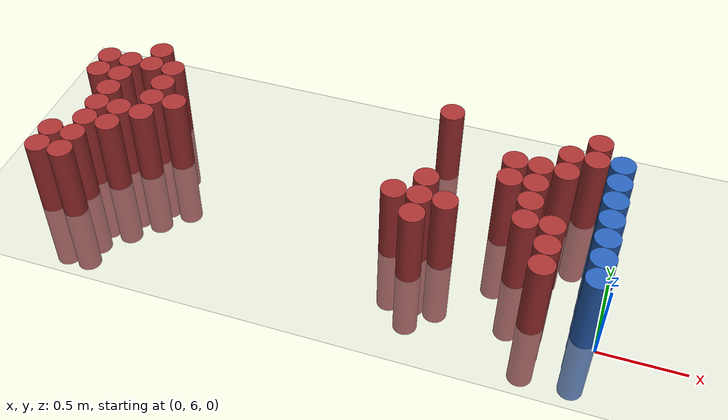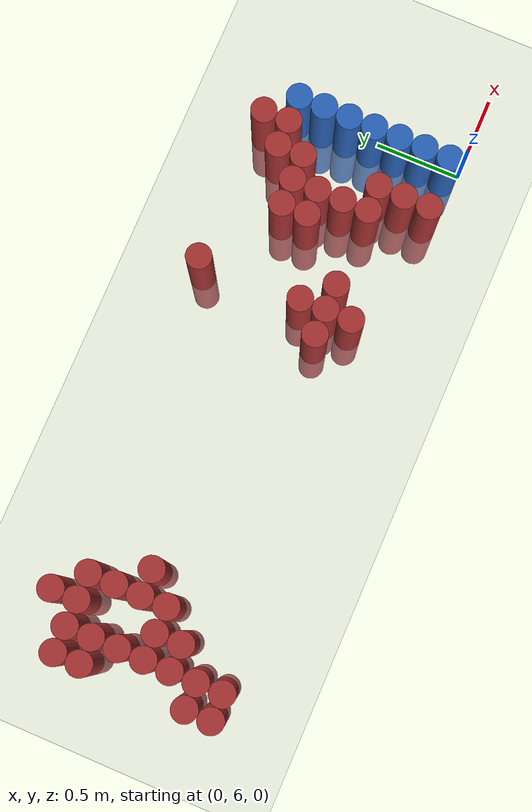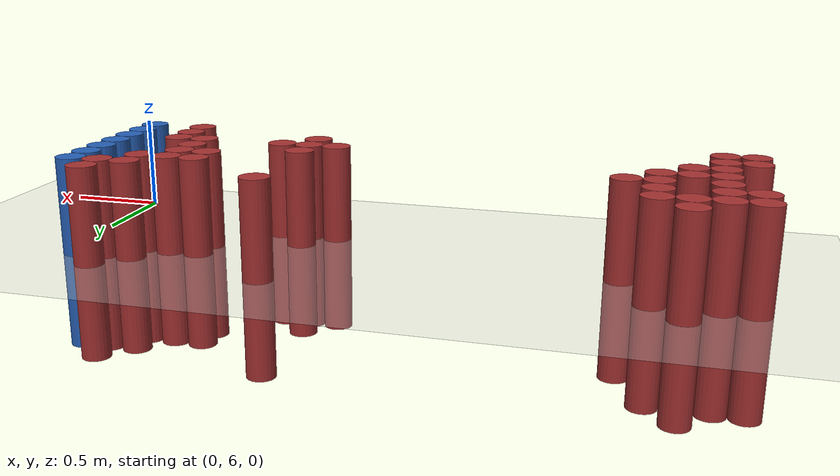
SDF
<sdf version="1.6">
 <world name="default">
  <model name="ground_plane">
   <static>1</static>
   <link name="link">
    <collision name="collision">
     <geometry><plane><normal>0 0 1</normal><size>100 100</size></plane></geometry>
     <surface><friction><ode><mu>100</mu><mu2>50</mu2></ode></friction></surface>
    </collision>
    <visual name="visual">
     <cast_shadows>0</cast_shadows>
     <geometry><plane><normal>0 0 1</normal><size>100 100</size></plane></geometry>
     <material>
      <script><uri>file://media/materials/scripts/gazebo.material</uri><name>Gazebo/Grey</name></script>
     </material>
    </visual>
   </link>
  </model>
  <model name="unit_cylinder_168">
   <static>1</static>
   <pose>-3.375000 6.075000 0.000000 0.000000 0.000000 0.000000</pose>
   <link name="link">
    <inertial>
     <mass>1</mass>
     <inertia><ixx>0.145833</ixx><ixy>0</ixy><ixz>0</ixz><iyy>0.145833</iyy><iyz>0</iyz><izz>0.125</izz></inertia>
    </inertial>
    <collision name="collision">
     <geometry><cylinder><radius>0.075000</radius><length>1</length></cylinder></geometry>
    </collision>
    <visual name="visual">
     <geometry><cylinder><radius>0.075000</radius><length>1</length></cylinder></geometry>
     <material>
      <ambient>0.648000 0.192000 0.192000 1</ambient>
      <diffuse>0.648000 0.192000 0.192000 1</diffuse>
     </material>
     <material>
      <script><name>Gazebo/Grey</name><uri>file://media/materials/scripts/gazebo.material</uri></script>
     </material>
    </visual>
   </link>
  </model>
  <model name="unit_cylinder_169">
   <static>1</static>
   <pose>-3.375000 6.225000 0.000000 0.000000 0.000000 0.000000</pose>
   <link name="link">
    <inertial>
     <mass>1</mass>
     <inertia><ixx>0.145833</ixx><ixy>0</ixy><ixz>0</ixz><iyy>0.145833</iyy><iyz>0</iyz><izz>0.125</izz></inertia>
    </inertial>
    <collision name="collision">
     <geometry><cylinder><radius>0.075000</radius><length>1</length></cylinder></geometry>
    </collision>
    <visual name="visual">
     <geometry><cylinder><radius>0.075000</radius><length>1</length></cylinder></geometry>
     <material>
      <ambient>0.648000 0.192000 0.192000 1</ambient>
      <diffuse>0.648000 0.192000 0.192000 1</diffuse>
     </material>
     <material>
      <script><name>Gazebo/Grey</name><uri>file://media/materials/scripts/gazebo.material</uri></script>
     </material>
    </visual>
   </link>
  </model>
  <model name="unit_cylinder_170">
   <static>1</static>
   <pose>-3.375000 6.825000 0.000000 0.000000 0.000000 0.000000</pose>
   <link name="link">
    <inertial>
     <mass>1</mass>
     <inertia><ixx>0.145833</ixx><ixy>0</ixy><ixz>0</ixz><iyy>0.145833</iyy><iyz>0</iyz><izz>0.125</izz></inertia>
    </inertial>
    <collision name="collision">
     <geometry><cylinder><radius>0.075000</radius><length>1</length></cylinder></geometry>
    </collision>
    <visual name="visual">
     <geometry><cylinder><radius>0.075000</radius><length>1</length></cylinder></geometry>
     <material>
      <ambient>0.648000 0.192000 0.192000 1</ambient>
      <diffuse>0.648000 0.192000 0.192000 1</diffuse>
     </material>
     <material>
      <script><name>Gazebo/Grey</name><uri>file://media/materials/scripts/gazebo.material</uri></script>
     </material>
    </visual>
   </link>
  </model>
  <model name="unit_cylinder_171">
   <static>1</static>
   <pose>-3.375000 6.975000 0.000000 0.000000 0.000000 0.000000</pose>
   <link name="link">
    <inertial>
     <mass>1</mass>
     <inertia><ixx>0.145833</ixx><ixy>0</ixy><ixz>0</ixz><iyy>0.145833</iyy><iyz>0</iyz><izz>0.125</izz></inertia>
    </inertial>
    <collision name="collision">
     <geometry><cylinder><radius>0.075000</radius><length>1</length></cylinder></geometry>
    </collision>
    <visual name="visual">
     <geometry><cylinder><radius>0.075000</radius><length>1</length></cylinder></geometry>
     <material>
      <ambient>0.648000 0.192000 0.192000 1</ambient>
      <diffuse>0.648000 0.192000 0.192000 1</diffuse>
     </material>
     <material>
      <script><name>Gazebo/Grey</name><uri>file://media/materials/scripts/gazebo.material</uri></script>
     </material>
    </visual>
   </link>
  </model>
  <model name="unit_cylinder_176">
   <static>1</static>
   <pose>-3.225000 6.075000 0.000000 0.000000 0.000000 0.000000</pose>
   <link name="link">
    <inertial>
     <mass>1</mass>
     <inertia><ixx>0.145833</ixx><ixy>0</ixy><ixz>0</ixz><iyy>0.145833</iyy><iyz>0</iyz><izz>0.125</izz></inertia>
    </inertial>
    <collision name="collision">
     <geometry><cylinder><radius>0.075000</radius><length>1</length></cylinder></geometry>
    </collision>
    <visual name="visual">
     <geometry><cylinder><radius>0.075000</radius><length>1</length></cylinder></geometry>
     <material>
      <ambient>0.648000 0.192000 0.192000 1</ambient>
      <diffuse>0.648000 0.192000 0.192000 1</diffuse>
     </material>
     <material>
      <script><name>Gazebo/Grey</name><uri>file://media/materials/scripts/gazebo.material</uri></script>
     </material>
    </visual>
   </link>
  </model>
  <model name="unit_cylinder_177">
   <static>1</static>
   <pose>-3.225000 6.225000 0.000000 0.000000 0.000000 0.000000</pose>
   <link name="link">
    <inertial>
     <mass>1</mass>
     <inertia><ixx>0.145833</ixx><ixy>0</ixy><ixz>0</ixz><iyy>0.145833</iyy><iyz>0</iyz><izz>0.125</izz></inertia>
    </inertial>
    <collision name="collision">
     <geometry><cylinder><radius>0.075000</radius><length>1</length></cylinder></geometry>
    </collision>
    <visual name="visual">
     <geometry><cylinder><radius>0.075000</radius><length>1</length></cylinder></geometry>
     <material>
      <ambient>0.648000 0.192000 0.192000 1</ambient>
      <diffuse>0.648000 0.192000 0.192000 1</diffuse>
     </material>
     <material>
      <script><name>Gazebo/Grey</name><uri>file://media/materials/scripts/gazebo.material</uri></script>
     </material>
    </visual>
   </link>
  </model>
  <model name="unit_cylinder_178">
   <static>1</static>
   <pose>-3.225000 6.375000 0.000000 0.000000 0.000000 0.000000</pose>
   <link name="link">
    <inertial>
     <mass>1</mass>
     <inertia><ixx>0.145833</ixx><ixy>0</ixy><ixz>0</ixz><iyy>0.145833</iyy><iyz>0</iyz><izz>0.125</izz></inertia>
    </inertial>
    <collision name="collision">
     <geometry><cylinder><radius>0.075000</radius><length>1</length></cylinder></geometry>
    </collision>
    <visual name="visual">
     <geometry><cylinder><radius>0.075000</radius><length>1</length></cylinder></geometry>
     <material>
      <ambient>0.648000 0.192000 0.192000 1</ambient>
      <diffuse>0.648000 0.192000 0.192000 1</diffuse>
     </material>
     <material>
      <script><name>Gazebo/Grey</name><uri>file://media/materials/scripts/gazebo.material</uri></script>
     </material>
    </visual>
   </link>
  </model>
  <model name="unit_cylinder_179">
   <static>1</static>
   <pose>-3.225000 6.525000 0.000000 0.000000 0.000000 0.000000</pose>
   <link name="link">
    <inertial>
     <mass>1</mass>
     <inertia><ixx>0.145833</ixx><ixy>0</ixy><ixz>0</ixz><iyy>0.145833</iyy><iyz>0</iyz><izz>0.125</izz></inertia>
    </inertial>
    <collision name="collision">
     <geometry><cylinder><radius>0.075000</radius><length>1</length></cylinder></geometry>
    </collision>
    <visual name="visual">
     <geometry><cylinder><radius>0.075000</radius><length>1</length></cylinder></geometry>
     <material>
      <ambient>0.648000 0.192000 0.192000 1</ambient>
      <diffuse>0.648000 0.192000 0.192000 1</diffuse>
     </material>
     <material>
      <script><name>Gazebo/Grey</name><uri>file://media/materials/scripts/gazebo.material</uri></script>
     </material>
    </visual>
   </link>
  </model>
  <model name="unit_cylinder_180">
   <static>1</static>
   <pose>-3.225000 6.675000 0.000000 0.000000 0.000000 0.000000</pose>
   <link name="link">
    <inertial>
     <mass>1</mass>
     <inertia><ixx>0.145833</ixx><ixy>0</ixy><ixz>0</ixz><iyy>0.145833</iyy><iyz>0</iyz><izz>0.125</izz></inertia>
    </inertial>
    <collision name="collision">
     <geometry><cylinder><radius>0.075000</radius><length>1</length></cylinder></geometry>
    </collision>
    <visual name="visual">
     <geometry><cylinder><radius>0.075000</radius><length>1</length></cylinder></geometry>
     <material>
      <ambient>0.648000 0.192000 0.192000 1</ambient>
      <diffuse>0.648000 0.192000 0.192000 1</diffuse>
     </material>
     <material>
      <script><name>Gazebo/Grey</name><uri>file://media/materials/scripts/gazebo.material</uri></script>
     </material>
    </visual>
   </link>
  </model>
  <model name="unit_cylinder_181">
   <static>1</static>
   <pose>-3.225000 6.825000 0.000000 0.000000 0.000000 0.000000</pose>
   <link name="link">
    <inertial>
     <mass>1</mass>
     <inertia><ixx>0.145833</ixx><ixy>0</ixy><ixz>0</ixz><iyy>0.145833</iyy><iyz>0</iyz><izz>0.125</izz></inertia>
    </inertial>
    <collision name="collision">
     <geometry><cylinder><radius>0.075000</radius><length>1</length></cylinder></geometry>
    </collision>
    <visual name="visual">
     <geometry><cylinder><radius>0.075000</radius><length>1</length></cylinder></geometry>
     <material>
      <ambient>0.648000 0.192000 0.192000 1</ambient>
      <diffuse>0.648000 0.192000 0.192000 1</diffuse>
     </material>
     <material>
      <script><name>Gazebo/Grey</name><uri>file://media/materials/scripts/gazebo.material</uri></script>
     </material>
    </visual>
   </link>
  </model>
  <model name="unit_cylinder_182">
   <static>1</static>
   <pose>-3.225000 6.975000 0.000000 0.000000 0.000000 0.000000</pose>
   <link name="link">
    <inertial>
     <mass>1</mass>
     <inertia><ixx>0.145833</ixx><ixy>0</ixy><ixz>0</ixz><iyy>0.145833</iyy><iyz>0</iyz><izz>0.125</izz></inertia>
    </inertial>
    <collision name="collision">
     <geometry><cylinder><radius>0.075000</radius><length>1</length></cylinder></geometry>
    </collision>
    <visual name="visual">
     <geometry><cylinder><radius>0.075000</radius><length>1</length></cylinder></geometry>
     <material>
      <ambient>0.648000 0.192000 0.192000 1</ambient>
      <diffuse>0.648000 0.192000 0.192000 1</diffuse>
     </material>
     <material>
      <script><name>Gazebo/Grey</name><uri>file://media/materials/scripts/gazebo.material</uri></script>
     </material>
    </visual>
   </link>
  </model>
  <model name="unit_cylinder_185">
   <static>1</static>
   <pose>-3.075000 6.375000 0.000000 0.000000 0.000000 0.000000</pose>
   <link name="link">
    <inertial>
     <mass>1</mass>
     <inertia><ixx>0.145833</ixx><ixy>0</ixy><ixz>0</ixz><iyy>0.145833</iyy><iyz>0</iyz><izz>0.125</izz></inertia>
    </inertial>
    <collision name="collision">
     <geometry><cylinder><radius>0.075000</radius><length>1</length></cylinder></geometry>
    </collision>
    <visual name="visual">
     <geometry><cylinder><radius>0.075000</radius><length>1</length></cylinder></geometry>
     <material>
      <ambient>0.648000 0.192000 0.192000 1</ambient>
      <diffuse>0.648000 0.192000 0.192000 1</diffuse>
     </material>
     <material>
      <script><name>Gazebo/Grey</name><uri>file://media/materials/scripts/gazebo.material</uri></script>
     </material>
    </visual>
   </link>
  </model>
  <model name="unit_cylinder_186">
   <static>1</static>
   <pose>-3.075000 6.525000 0.000000 0.000000 0.000000 0.000000</pose>
   <link name="link">
    <inertial>
     <mass>1</mass>
     <inertia><ixx>0.145833</ixx><ixy>0</ixy><ixz>0</ixz><iyy>0.145833</iyy><iyz>0</iyz><izz>0.125</izz></inertia>
    </inertial>
    <collision name="collision">
     <geometry><cylinder><radius>0.075000</radius><length>1</length></cylinder></geometry>
    </collision>
    <visual name="visual">
     <geometry><cylinder><radius>0.075000</radius><length>1</length></cylinder></geometry>
     <material>
      <ambient>0.648000 0.192000 0.192000 1</ambient>
      <diffuse>0.648000 0.192000 0.192000 1</diffuse>
     </material>
     <material>
      <script><name>Gazebo/Grey</name><uri>file://media/materials/scripts/gazebo.material</uri></script>
     </material>
    </visual>
   </link>
  </model>
  <model name="unit_cylinder_187">
   <static>1</static>
   <pose>-3.075000 6.975000 0.000000 0.000000 0.000000 0.000000</pose>
   <link name="link">
    <inertial>
     <mass>1</mass>
     <inertia><ixx>0.145833</ixx><ixy>0</ixy><ixz>0</ixz><iyy>0.145833</iyy><iyz>0</iyz><izz>0.125</izz></inertia>
    </inertial>
    <collision name="collision">
     <geometry><cylinder><radius>0.075000</radius><length>1</length></cylinder></geometry>
    </collision>
    <visual name="visual">
     <geometry><cylinder><radius>0.075000</radius><length>1</length></cylinder></geometry>
     <material>
      <ambient>0.648000 0.192000 0.192000 1</ambient>
      <diffuse>0.648000 0.192000 0.192000 1</diffuse>
     </material>
     <material>
      <script><name>Gazebo/Grey</name><uri>file://media/materials/scripts/gazebo.material</uri></script>
     </material>
    </visual>
   </link>
  </model>
  <model name="unit_cylinder_188">
   <static>1</static>
   <pose>-3.075000 7.125000 0.000000 0.000000 0.000000 0.000000</pose>
   <link name="link">
    <inertial>
     <mass>1</mass>
     <inertia><ixx>0.145833</ixx><ixy>0</ixy><ixz>0</ixz><iyy>0.145833</iyy><iyz>0</iyz><izz>0.125</izz></inertia>
    </inertial>
    <collision name="collision">
     <geometry><cylinder><radius>0.075000</radius><length>1</length></cylinder></geometry>
    </collision>
    <visual name="visual">
     <geometry><cylinder><radius>0.075000</radius><length>1</length></cylinder></geometry>
     <material>
      <ambient>0.648000 0.192000 0.192000 1</ambient>
      <diffuse>0.648000 0.192000 0.192000 1</diffuse>
     </material>
     <material>
      <script><name>Gazebo/Grey</name><uri>file://media/materials/scripts/gazebo.material</uri></script>
     </material>
    </visual>
   </link>
  </model>
  <model name="unit_cylinder_190">
   <static>1</static>
   <pose>-2.925000 6.525000 0.000000 0.000000 0.000000 0.000000</pose>
   <link name="link">
    <inertial>
     <mass>1</mass>
     <inertia><ixx>0.145833</ixx><ixy>0</ixy><ixz>0</ixz><iyy>0.145833</iyy><iyz>0</iyz><izz>0.125</izz></inertia>
    </inertial>
    <collision name="collision">
     <geometry><cylinder><radius>0.075000</radius><length>1</length></cylinder></geometry>
    </collision>
    <visual name="visual">
     <geometry><cylinder><radius>0.075000</radius><length>1</length></cylinder></geometry>
     <material>
      <ambient>0.648000 0.192000 0.192000 1</ambient>
      <diffuse>0.648000 0.192000 0.192000 1</diffuse>
     </material>
     <material>
      <script><name>Gazebo/Grey</name><uri>file://media/materials/scripts/gazebo.material</uri></script>
     </material>
    </visual>
   </link>
  </model>
  <model name="unit_cylinder_191">
   <static>1</static>
   <pose>-2.925000 6.675000 0.000000 0.000000 0.000000 0.000000</pose>
   <link name="link">
    <inertial>
     <mass>1</mass>
     <inertia><ixx>0.145833</ixx><ixy>0</ixy><ixz>0</ixz><iyy>0.145833</iyy><iyz>0</iyz><izz>0.125</izz></inertia>
    </inertial>
    <collision name="collision">
     <geometry><cylinder><radius>0.075000</radius><length>1</length></cylinder></geometry>
    </collision>
    <visual name="visual">
     <geometry><cylinder><radius>0.075000</radius><length>1</length></cylinder></geometry>
     <material>
      <ambient>0.648000 0.192000 0.192000 1</ambient>
      <diffuse>0.648000 0.192000 0.192000 1</diffuse>
     </material>
     <material>
      <script><name>Gazebo/Grey</name><uri>file://media/materials/scripts/gazebo.material</uri></script>
     </material>
    </visual>
   </link>
  </model>
  <model name="unit_cylinder_192">
   <static>1</static>
   <pose>-2.925000 6.825000 0.000000 0.000000 0.000000 0.000000</pose>
   <link name="link">
    <inertial>
     <mass>1</mass>
     <inertia><ixx>0.145833</ixx><ixy>0</ixy><ixz>0</ixz><iyy>0.145833</iyy><iyz>0</iyz><izz>0.125</izz></inertia>
    </inertial>
    <collision name="collision">
     <geometry><cylinder><radius>0.075000</radius><length>1</length></cylinder></geometry>
    </collision>
    <visual name="visual">
     <geometry><cylinder><radius>0.075000</radius><length>1</length></cylinder></geometry>
     <material>
      <ambient>0.648000 0.192000 0.192000 1</ambient>
      <diffuse>0.648000 0.192000 0.192000 1</diffuse>
     </material>
     <material>
      <script><name>Gazebo/Grey</name><uri>file://media/materials/scripts/gazebo.material</uri></script>
     </material>
    </visual>
   </link>
  </model>
  <model name="unit_cylinder_193">
   <static>1</static>
   <pose>-2.925000 6.975000 0.000000 0.000000 0.000000 0.000000</pose>
   <link name="link">
    <inertial>
     <mass>1</mass>
     <inertia><ixx>0.145833</ixx><ixy>0</ixy><ixz>0</ixz><iyy>0.145833</iyy><iyz>0</iyz><izz>0.125</izz></inertia>
    </inertial>
    <collision name="collision">
     <geometry><cylinder><radius>0.075000</radius><length>1</length></cylinder></geometry>
    </collision>
    <visual name="visual">
     <geometry><cylinder><radius>0.075000</radius><length>1</length></cylinder></geometry>
     <material>
      <ambient>0.648000 0.192000 0.192000 1</ambient>
      <diffuse>0.648000 0.192000 0.192000 1</diffuse>
     </material>
     <material>
      <script><name>Gazebo/Grey</name><uri>file://media/materials/scripts/gazebo.material</uri></script>
     </material>
    </visual>
   </link>
  </model>
  <model name="unit_cylinder_196">
   <static>1</static>
   <pose>-2.775000 6.675000 0.000000 0.000000 0.000000 0.000000</pose>
   <link name="link">
    <inertial>
     <mass>1</mass>
     <inertia><ixx>0.145833</ixx><ixy>0</ixy><ixz>0</ixz><iyy>0.145833</iyy><iyz>0</iyz><izz>0.125</izz></inertia>
    </inertial>
    <collision name="collision">
     <geometry><cylinder><radius>0.075000</radius><length>1</length></cylinder></geometry>
    </collision>
    <visual name="visual">
     <geometry><cylinder><radius>0.075000</radius><length>1</length></cylinder></geometry>
     <material>
      <ambient>0.648000 0.192000 0.192000 1</ambient>
      <diffuse>0.648000 0.192000 0.192000 1</diffuse>
     </material>
     <material>
      <script><name>Gazebo/Grey</name><uri>file://media/materials/scripts/gazebo.material</uri></script>
     </material>
    </visual>
   </link>
  </model>
  <model name="unit_cylinder_204">
   <static>1</static>
   <pose>-1.275000 6.375000 0.000000 0.000000 0.000000 0.000000</pose>
   <link name="link">
    <inertial>
     <mass>1</mass>
     <inertia><ixx>0.145833</ixx><ixy>0</ixy><ixz>0</ixz><iyy>0.145833</iyy><iyz>0</iyz><izz>0.125</izz></inertia>
    </inertial>
    <collision name="collision">
     <geometry><cylinder><radius>0.075000</radius><length>1</length></cylinder></geometry>
    </collision>
    <visual name="visual">
     <geometry><cylinder><radius>0.075000</radius><length>1</length></cylinder></geometry>
     <material>
      <ambient>0.648000 0.192000 0.192000 1</ambient>
      <diffuse>0.648000 0.192000 0.192000 1</diffuse>
     </material>
     <material>
      <script><name>Gazebo/Grey</name><uri>file://media/materials/scripts/gazebo.material</uri></script>
     </material>
    </visual>
   </link>
  </model>
  <model name="unit_cylinder_207">
   <static>1</static>
   <pose>-1.125000 6.225000 0.000000 0.000000 0.000000 0.000000</pose>
   <link name="link">
    <inertial>
     <mass>1</mass>
     <inertia><ixx>0.145833</ixx><ixy>0</ixy><ixz>0</ixz><iyy>0.145833</iyy><iyz>0</iyz><izz>0.125</izz></inertia>
    </inertial>
    <collision name="collision">
     <geometry><cylinder><radius>0.075000</radius><length>1</length></cylinder></geometry>
    </collision>
    <visual name="visual">
     <geometry><cylinder><radius>0.075000</radius><length>1</length></cylinder></geometry>
     <material>
      <ambient>0.648000 0.192000 0.192000 1</ambient>
      <diffuse>0.648000 0.192000 0.192000 1</diffuse>
     </material>
     <material>
      <script><name>Gazebo/Grey</name><uri>file://media/materials/scripts/gazebo.material</uri></script>
     </material>
    </visual>
   </link>
  </model>
  <model name="unit_cylinder_208">
   <static>1</static>
   <pose>-1.125000 6.375000 0.000000 0.000000 0.000000 0.000000</pose>
   <link name="link">
    <inertial>
     <mass>1</mass>
     <inertia><ixx>0.145833</ixx><ixy>0</ixy><ixz>0</ixz><iyy>0.145833</iyy><iyz>0</iyz><izz>0.125</izz></inertia>
    </inertial>
    <collision name="collision">
     <geometry><cylinder><radius>0.075000</radius><length>1</length></cylinder></geometry>
    </collision>
    <visual name="visual">
     <geometry><cylinder><radius>0.075000</radius><length>1</length></cylinder></geometry>
     <material>
      <ambient>0.648000 0.192000 0.192000 1</ambient>
      <diffuse>0.648000 0.192000 0.192000 1</diffuse>
     </material>
     <material>
      <script><name>Gazebo/Grey</name><uri>file://media/materials/scripts/gazebo.material</uri></script>
     </material>
    </visual>
   </link>
  </model>
  <model name="unit_cylinder_209">
   <static>1</static>
   <pose>-1.125000 6.525000 0.000000 0.000000 0.000000 0.000000</pose>
   <link name="link">
    <inertial>
     <mass>1</mass>
     <inertia><ixx>0.145833</ixx><ixy>0</ixy><ixz>0</ixz><iyy>0.145833</iyy><iyz>0</iyz><izz>0.125</izz></inertia>
    </inertial>
    <collision name="collision">
     <geometry><cylinder><radius>0.075000</radius><length>1</length></cylinder></geometry>
    </collision>
    <visual name="visual">
     <geometry><cylinder><radius>0.075000</radius><length>1</length></cylinder></geometry>
     <material>
      <ambient>0.648000 0.192000 0.192000 1</ambient>
      <diffuse>0.648000 0.192000 0.192000 1</diffuse>
     </material>
     <material>
      <script><name>Gazebo/Grey</name><uri>file://media/materials/scripts/gazebo.material</uri></script>
     </material>
    </visual>
   </link>
  </model>
  <model name="unit_cylinder_210">
   <static>1</static>
   <pose>-1.125000 7.125000 0.000000 0.000000 0.000000 0.000000</pose>
   <link name="link">
    <inertial>
     <mass>1</mass>
     <inertia><ixx>0.145833</ixx><ixy>0</ixy><ixz>0</ixz><iyy>0.145833</iyy><iyz>0</iyz><izz>0.125</izz></inertia>
    </inertial>
    <collision name="collision">
     <geometry><cylinder><radius>0.075000</radius><length>1</length></cylinder></geometry>
    </collision>
    <visual name="visual">
     <geometry><cylinder><radius>0.075000</radius><length>1</length></cylinder></geometry>
     <material>
      <ambient>0.648000 0.192000 0.192000 1</ambient>
      <diffuse>0.648000 0.192000 0.192000 1</diffuse>
     </material>
     <material>
      <script><name>Gazebo/Grey</name><uri>file://media/materials/scripts/gazebo.material</uri></script>
     </material>
    </visual>
   </link>
  </model>
  <model name="unit_cylinder_216">
   <static>1</static>
   <pose>-0.975000 6.375000 0.000000 0.000000 0.000000 0.000000</pose>
   <link name="link">
    <inertial>
     <mass>1</mass>
     <inertia><ixx>0.145833</ixx><ixy>0</ixy><ixz>0</ixz><iyy>0.145833</iyy><iyz>0</iyz><izz>0.125</izz></inertia>
    </inertial>
    <collision name="collision">
     <geometry><cylinder><radius>0.075000</radius><length>1</length></cylinder></geometry>
    </collision>
    <visual name="visual">
     <geometry><cylinder><radius>0.075000</radius><length>1</length></cylinder></geometry>
     <material>
      <ambient>0.648000 0.192000 0.192000 1</ambient>
      <diffuse>0.648000 0.192000 0.192000 1</diffuse>
     </material>
     <material>
      <script><name>Gazebo/Grey</name><uri>file://media/materials/scripts/gazebo.material</uri></script>
     </material>
    </visual>
   </link>
  </model>
  <model name="unit_cylinder_220">
   <static>1</static>
   <pose>-0.675000 6.675000 0.000000 0.000000 0.000000 0.000000</pose>
   <link name="link">
    <inertial>
     <mass>1</mass>
     <inertia><ixx>0.145833</ixx><ixy>0</ixy><ixz>0</ixz><iyy>0.145833</iyy><iyz>0</iyz><izz>0.125</izz></inertia>
    </inertial>
    <collision name="collision">
     <geometry><cylinder><radius>0.075000</radius><length>1</length></cylinder></geometry>
    </collision>
    <visual name="visual">
     <geometry><cylinder><radius>0.075000</radius><length>1</length></cylinder></geometry>
     <material>
      <ambient>0.648000 0.192000 0.192000 1</ambient>
      <diffuse>0.648000 0.192000 0.192000 1</diffuse>
     </material>
     <material>
      <script><name>Gazebo/Grey</name><uri>file://media/materials/scripts/gazebo.material</uri></script>
     </material>
    </visual>
   </link>
  </model>
  <model name="unit_cylinder_221">
   <static>1</static>
   <pose>-0.675000 6.825000 0.000000 0.000000 0.000000 0.000000</pose>
   <link name="link">
    <inertial>
     <mass>1</mass>
     <inertia><ixx>0.145833</ixx><ixy>0</ixy><ixz>0</ixz><iyy>0.145833</iyy><iyz>0</iyz><izz>0.125</izz></inertia>
    </inertial>
    <collision name="collision">
     <geometry><cylinder><radius>0.075000</radius><length>1</length></cylinder></geometry>
    </collision>
    <visual name="visual">
     <geometry><cylinder><radius>0.075000</radius><length>1</length></cylinder></geometry>
     <material>
      <ambient>0.648000 0.192000 0.192000 1</ambient>
      <diffuse>0.648000 0.192000 0.192000 1</diffuse>
     </material>
     <material>
      <script><name>Gazebo/Grey</name><uri>file://media/materials/scripts/gazebo.material</uri></script>
     </material>
    </visual>
   </link>
  </model>
  <model name="unit_cylinder_223">
   <static>1</static>
   <pose>-0.525000 6.375000 0.000000 0.000000 0.000000 0.000000</pose>
   <link name="link">
    <inertial>
     <mass>1</mass>
     <inertia><ixx>0.145833</ixx><ixy>0</ixy><ixz>0</ixz><iyy>0.145833</iyy><iyz>0</iyz><izz>0.125</izz></inertia>
    </inertial>
    <collision name="collision">
     <geometry><cylinder><radius>0.075000</radius><length>1</length></cylinder></geometry>
    </collision>
    <visual name="visual">
     <geometry><cylinder><radius>0.075000</radius><length>1</length></cylinder></geometry>
     <material>
      <ambient>0.648000 0.192000 0.192000 1</ambient>
      <diffuse>0.648000 0.192000 0.192000 1</diffuse>
     </material>
     <material>
      <script><name>Gazebo/Grey</name><uri>file://media/materials/scripts/gazebo.material</uri></script>
     </material>
    </visual>
   </link>
  </model>
  <model name="unit_cylinder_224">
   <static>1</static>
   <pose>-0.525000 6.525000 0.000000 0.000000 0.000000 0.000000</pose>
   <link name="link">
    <inertial>
     <mass>1</mass>
     <inertia><ixx>0.145833</ixx><ixy>0</ixy><ixz>0</ixz><iyy>0.145833</iyy><iyz>0</iyz><izz>0.125</izz></inertia>
    </inertial>
    <collision name="collision">
     <geometry><cylinder><radius>0.075000</radius><length>1</length></cylinder></geometry>
    </collision>
    <visual name="visual">
     <geometry><cylinder><radius>0.075000</radius><length>1</length></cylinder></geometry>
     <material>
      <ambient>0.648000 0.192000 0.192000 1</ambient>
      <diffuse>0.648000 0.192000 0.192000 1</diffuse>
     </material>
     <material>
      <script><name>Gazebo/Grey</name><uri>file://media/materials/scripts/gazebo.material</uri></script>
     </material>
    </visual>
   </link>
  </model>
  <model name="unit_cylinder_225">
   <static>1</static>
   <pose>-0.525000 6.675000 0.000000 0.000000 0.000000 0.000000</pose>
   <link name="link">
    <inertial>
     <mass>1</mass>
     <inertia><ixx>0.145833</ixx><ixy>0</ixy><ixz>0</ixz><iyy>0.145833</iyy><iyz>0</iyz><izz>0.125</izz></inertia>
    </inertial>
    <collision name="collision">
     <geometry><cylinder><radius>0.075000</radius><length>1</length></cylinder></geometry>
    </collision>
    <visual name="visual">
     <geometry><cylinder><radius>0.075000</radius><length>1</length></cylinder></geometry>
     <material>
      <ambient>0.648000 0.192000 0.192000 1</ambient>
      <diffuse>0.648000 0.192000 0.192000 1</diffuse>
     </material>
     <material>
      <script><name>Gazebo/Grey</name><uri>file://media/materials/scripts/gazebo.material</uri></script>
     </material>
    </visual>
   </link>
  </model>
  <model name="unit_cylinder_226">
   <static>1</static>
   <pose>-0.525000 6.825000 0.000000 0.000000 0.000000 0.000000</pose>
   <link name="link">
    <inertial>
     <mass>1</mass>
     <inertia><ixx>0.145833</ixx><ixy>0</ixy><ixz>0</ixz><iyy>0.145833</iyy><iyz>0</iyz><izz>0.125</izz></inertia>
    </inertial>
    <collision name="collision">
     <geometry><cylinder><radius>0.075000</radius><length>1</length></cylinder></geometry>
    </collision>
    <visual name="visual">
     <geometry><cylinder><radius>0.075000</radius><length>1</length></cylinder></geometry>
     <material>
      <ambient>0.648000 0.192000 0.192000 1</ambient>
      <diffuse>0.648000 0.192000 0.192000 1</diffuse>
     </material>
     <material>
      <script><name>Gazebo/Grey</name><uri>file://media/materials/scripts/gazebo.material</uri></script>
     </material>
    </visual>
   </link>
  </model>
  <model name="unit_cylinder_229">
   <static>1</static>
   <pose>-0.375000 6.075000 0.000000 0.000000 0.000000 0.000000</pose>
   <link name="link">
    <inertial>
     <mass>1</mass>
     <inertia><ixx>0.145833</ixx><ixy>0</ixy><ixz>0</ixz><iyy>0.145833</iyy><iyz>0</iyz><izz>0.125</izz></inertia>
    </inertial>
    <collision name="collision">
     <geometry><cylinder><radius>0.075000</radius><length>1</length></cylinder></geometry>
    </collision>
    <visual name="visual">
     <geometry><cylinder><radius>0.075000</radius><length>1</length></cylinder></geometry>
     <material>
      <ambient>0.648000 0.192000 0.192000 1</ambient>
      <diffuse>0.648000 0.192000 0.192000 1</diffuse>
     </material>
     <material>
      <script><name>Gazebo/Grey</name><uri>file://media/materials/scripts/gazebo.material</uri></script>
     </material>
    </visual>
   </link>
  </model>
  <model name="unit_cylinder_230">
   <static>1</static>
   <pose>-0.375000 6.225000 0.000000 0.000000 0.000000 0.000000</pose>
   <link name="link">
    <inertial>
     <mass>1</mass>
     <inertia><ixx>0.145833</ixx><ixy>0</ixy><ixz>0</ixz><iyy>0.145833</iyy><iyz>0</iyz><izz>0.125</izz></inertia>
    </inertial>
    <collision name="collision">
     <geometry><cylinder><radius>0.075000</radius><length>1</length></cylinder></geometry>
    </collision>
    <visual name="visual">
     <geometry><cylinder><radius>0.075000</radius><length>1</length></cylinder></geometry>
     <material>
      <ambient>0.648000 0.192000 0.192000 1</ambient>
      <diffuse>0.648000 0.192000 0.192000 1</diffuse>
     </material>
     <material>
      <script><name>Gazebo/Grey</name><uri>file://media/materials/scripts/gazebo.material</uri></script>
     </material>
    </visual>
   </link>
  </model>
  <model name="unit_cylinder_231">
   <static>1</static>
   <pose>-0.375000 6.375000 0.000000 0.000000 0.000000 0.000000</pose>
   <link name="link">
    <inertial>
     <mass>1</mass>
     <inertia><ixx>0.145833</ixx><ixy>0</ixy><ixz>0</ixz><iyy>0.145833</iyy><iyz>0</iyz><izz>0.125</izz></inertia>
    </inertial>
    <collision name="collision">
     <geometry><cylinder><radius>0.075000</radius><length>1</length></cylinder></geometry>
    </collision>
    <visual name="visual">
     <geometry><cylinder><radius>0.075000</radius><length>1</length></cylinder></geometry>
     <material>
      <ambient>0.648000 0.192000 0.192000 1</ambient>
      <diffuse>0.648000 0.192000 0.192000 1</diffuse>
     </material>
     <material>
      <script><name>Gazebo/Grey</name><uri>file://media/materials/scripts/gazebo.material</uri></script>
     </material>
    </visual>
   </link>
  </model>
  <model name="unit_cylinder_232">
   <static>1</static>
   <pose>-0.375000 6.825000 0.000000 0.000000 0.000000 0.000000</pose>
   <link name="link">
    <inertial>
     <mass>1</mass>
     <inertia><ixx>0.145833</ixx><ixy>0</ixy><ixz>0</ixz><iyy>0.145833</iyy><iyz>0</iyz><izz>0.125</izz></inertia>
    </inertial>
    <collision name="collision">
     <geometry><cylinder><radius>0.075000</radius><length>1</length></cylinder></geometry>
    </collision>
    <visual name="visual">
     <geometry><cylinder><radius>0.075000</radius><length>1</length></cylinder></geometry>
     <material>
      <ambient>0.648000 0.192000 0.192000 1</ambient>
      <diffuse>0.648000 0.192000 0.192000 1</diffuse>
     </material>
     <material>
      <script><name>Gazebo/Grey</name><uri>file://media/materials/scripts/gazebo.material</uri></script>
     </material>
    </visual>
   </link>
  </model>
  <model name="unit_cylinder_233">
   <static>1</static>
   <pose>-0.375000 6.975000 0.000000 0.000000 0.000000 0.000000</pose>
   <link name="link">
    <inertial>
     <mass>1</mass>
     <inertia><ixx>0.145833</ixx><ixy>0</ixy><ixz>0</ixz><iyy>0.145833</iyy><iyz>0</iyz><izz>0.125</izz></inertia>
    </inertial>
    <collision name="collision">
     <geometry><cylinder><radius>0.075000</radius><length>1</length></cylinder></geometry>
    </collision>
    <visual name="visual">
     <geometry><cylinder><radius>0.075000</radius><length>1</length></cylinder></geometry>
     <material>
      <ambient>0.648000 0.192000 0.192000 1</ambient>
      <diffuse>0.648000 0.192000 0.192000 1</diffuse>
     </material>
     <material>
      <script><name>Gazebo/Grey</name><uri>file://media/materials/scripts/gazebo.material</uri></script>
     </material>
    </visual>
   </link>
  </model>
  <model name="unit_cylinder_237">
   <static>1</static>
   <pose>-0.225000 6.975000 0.000000 0.000000 0.000000 0.000000</pose>
   <link name="link">
    <inertial>
     <mass>1</mass>
     <inertia><ixx>0.145833</ixx><ixy>0</ixy><ixz>0</ixz><iyy>0.145833</iyy><iyz>0</iyz><izz>0.125</izz></inertia>
    </inertial>
    <collision name="collision">
     <geometry><cylinder><radius>0.075000</radius><length>1</length></cylinder></geometry>
    </collision>
    <visual name="visual">
     <geometry><cylinder><radius>0.075000</radius><length>1</length></cylinder></geometry>
     <material>
      <ambient>0.648000 0.192000 0.192000 1</ambient>
      <diffuse>0.648000 0.192000 0.192000 1</diffuse>
     </material>
     <material>
      <script><name>Gazebo/Grey</name><uri>file://media/materials/scripts/gazebo.material</uri></script>
     </material>
    </visual>
   </link>
  </model>
  <model name="unit_cylinder_238">
   <static>1</static>
   <pose>-0.225000 7.125000 0.000000 0.000000 0.000000 0.000000</pose>
   <link name="link">
    <inertial>
     <mass>1</mass>
     <inertia><ixx>0.145833</ixx><ixy>0</ixy><ixz>0</ixz><iyy>0.145833</iyy><iyz>0</iyz><izz>0.125</izz></inertia>
    </inertial>
    <collision name="collision">
     <geometry><cylinder><radius>0.075000</radius><length>1</length></cylinder></geometry>
    </collision>
    <visual name="visual">
     <geometry><cylinder><radius>0.075000</radius><length>1</length></cylinder></geometry>
     <material>
      <ambient>0.648000 0.192000 0.192000 1</ambient>
      <diffuse>0.648000 0.192000 0.192000 1</diffuse>
     </material>
     <material>
      <script><name>Gazebo/Grey</name><uri>file://media/materials/scripts/gazebo.material</uri></script>
     </material>
    </visual>
   </link>
  </model>
  <model name="unit_cylinder_254">
   <static>1</static>
   <pose>-0.075000 6.075000 0.000000 0.000000 0.000000 0.000000</pose>
   <link name="link">
    <inertial>
     <mass>1</mass>
     <inertia><ixx>0.145833</ixx><ixy>0</ixy><ixz>0</ixz><iyy>0.145833</iyy><iyz>0</iyz><izz>0.125</izz></inertia>
    </inertial>
    <collision name="collision">
     <geometry><cylinder><radius>0.075000</radius><length>1</length></cylinder></geometry>
    </collision>
    <visual name="visual">
     <geometry><cylinder><radius>0.075000</radius><length>1</length></cylinder></geometry>
     <material>
      <ambient>0.152000 0.379000 0.720000 1</ambient>
      <diffuse>0.152000 0.379000 0.720000 1</diffuse>
     </material>
     <material>
      <script><name>Gazebo/Grey</name><uri>file://media/materials/scripts/gazebo.material</uri></script>
     </material>
    </visual>
   </link>
  </model>
  <model name="unit_cylinder_255">
   <static>1</static>
   <pose>-0.075000 6.225000 0.000000 0.000000 0.000000 0.000000</pose>
   <link name="link">
    <inertial>
     <mass>1</mass>
     <inertia><ixx>0.145833</ixx><ixy>0</ixy><ixz>0</ixz><iyy>0.145833</iyy><iyz>0</iyz><izz>0.125</izz></inertia>
    </inertial>
    <collision name="collision">
     <geometry><cylinder><radius>0.075000</radius><length>1</length></cylinder></geometry>
    </collision>
    <visual name="visual">
     <geometry><cylinder><radius>0.075000</radius><length>1</length></cylinder></geometry>
     <material>
      <ambient>0.152000 0.379000 0.720000 1</ambient>
      <diffuse>0.152000 0.379000 0.720000 1</diffuse>
     </material>
     <material>
      <script><name>Gazebo/Grey</name><uri>file://media/materials/scripts/gazebo.material</uri></script>
     </material>
    </visual>
   </link>
  </model>
  <model name="unit_cylinder_256">
   <static>1</static>
   <pose>-0.075000 6.375000 0.000000 0.000000 0.000000 0.000000</pose>
   <link name="link">
    <inertial>
     <mass>1</mass>
     <inertia><ixx>0.145833</ixx><ixy>0</ixy><ixz>0</ixz><iyy>0.145833</iyy><iyz>0</iyz><izz>0.125</izz></inertia>
    </inertial>
    <collision name="collision">
     <geometry><cylinder><radius>0.075000</radius><length>1</length></cylinder></geometry>
    </collision>
    <visual name="visual">
     <geometry><cylinder><radius>0.075000</radius><length>1</length></cylinder></geometry>
     <material>
      <ambient>0.152000 0.379000 0.720000 1</ambient>
      <diffuse>0.152000 0.379000 0.720000 1</diffuse>
     </material>
     <material>
      <script><name>Gazebo/Grey</name><uri>file://media/materials/scripts/gazebo.material</uri></script>
     </material>
    </visual>
   </link>
  </model>
  <model name="unit_cylinder_257">
   <static>1</static>
   <pose>-0.075000 6.525000 0.000000 0.000000 0.000000 0.000000</pose>
   <link name="link">
    <inertial>
     <mass>1</mass>
     <inertia><ixx>0.145833</ixx><ixy>0</ixy><ixz>0</ixz><iyy>0.145833</iyy><iyz>0</iyz><izz>0.125</izz></inertia>
    </inertial>
    <collision name="collision">
     <geometry><cylinder><radius>0.075000</radius><length>1</length></cylinder></geometry>
    </collision>
    <visual name="visual">
     <geometry><cylinder><radius>0.075000</radius><length>1</length></cylinder></geometry>
     <material>
      <ambient>0.152000 0.379000 0.720000 1</ambient>
      <diffuse>0.152000 0.379000 0.720000 1</diffuse>
     </material>
     <material>
      <script><name>Gazebo/Grey</name><uri>file://media/materials/scripts/gazebo.material</uri></script>
     </material>
    </visual>
   </link>
  </model>
  <model name="unit_cylinder_258">
   <static>1</static>
   <pose>-0.075000 6.675000 0.000000 0.000000 0.000000 0.000000</pose>
   <link name="link">
    <inertial>
     <mass>1</mass>
     <inertia><ixx>0.145833</ixx><ixy>0</ixy><ixz>0</ixz><iyy>0.145833</iyy><iyz>0</iyz><izz>0.125</izz></inertia>
    </inertial>
    <collision name="collision">
     <geometry><cylinder><radius>0.075000</radius><length>1</length></cylinder></geometry>
    </collision>
    <visual name="visual">
     <geometry><cylinder><radius>0.075000</radius><length>1</length></cylinder></geometry>
     <material>
      <ambient>0.152000 0.379000 0.720000 1</ambient>
      <diffuse>0.152000 0.379000 0.720000 1</diffuse>
     </material>
     <material>
      <script><name>Gazebo/Grey</name><uri>file://media/materials/scripts/gazebo.material</uri></script>
     </material>
    </visual>
   </link>
  </model>
  <model name="unit_cylinder_259">
   <static>1</static>
   <pose>-0.075000 6.825000 0.000000 0.000000 0.000000 0.000000</pose>
   <link name="link">
    <inertial>
     <mass>1</mass>
     <inertia><ixx>0.145833</ixx><ixy>0</ixy><ixz>0</ixz><iyy>0.145833</iyy><iyz>0</iyz><izz>0.125</izz></inertia>
    </inertial>
    <collision name="collision">
     <geometry><cylinder><radius>0.075000</radius><length>1</length></cylinder></geometry>
    </collision>
    <visual name="visual">
     <geometry><cylinder><radius>0.075000</radius><length>1</length></cylinder></geometry>
     <material>
      <ambient>0.152000 0.379000 0.720000 1</ambient>
      <diffuse>0.152000 0.379000 0.720000 1</diffuse>
     </material>
     <material>
      <script><name>Gazebo/Grey</name><uri>file://media/materials/scripts/gazebo.material</uri></script>
     </material>
    </visual>
   </link>
  </model>
  <model name="unit_cylinder_260">
   <static>1</static>
   <pose>-0.075000 6.975000 0.000000 0.000000 0.000000 0.000000</pose>
   <link name="link">
    <inertial>
     <mass>1</mass>
     <inertia><ixx>0.145833</ixx><ixy>0</ixy><ixz>0</ixz><iyy>0.145833</iyy><iyz>0</iyz><izz>0.125</izz></inertia>
    </inertial>
    <collision name="collision">
     <geometry><cylinder><radius>0.075000</radius><length>1</length></cylinder></geometry>
    </collision>
    <visual name="visual">
     <geometry><cylinder><radius>0.075000</radius><length>1</length></cylinder></geometry>
     <material>
      <ambient>0.152000 0.379000 0.720000 1</ambient>
      <diffuse>0.152000 0.379000 0.720000 1</diffuse>
     </material>
     <material>
      <script><name>Gazebo/Grey</name><uri>file://media/materials/scripts/gazebo.material</uri></script>
     </material>
    </visual>
   </link>
  </model>
 </world>
</sdf>
